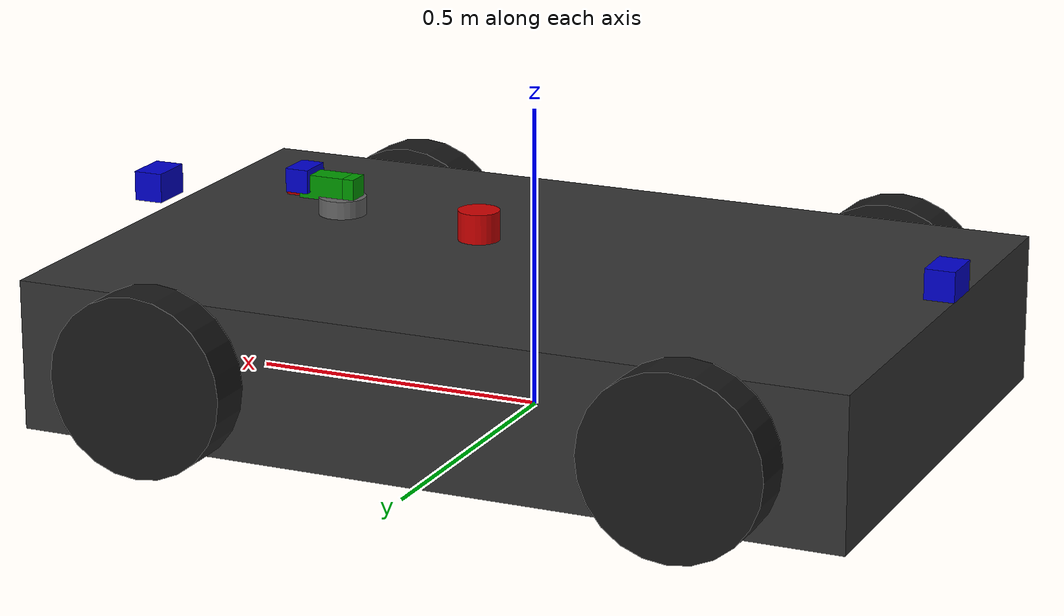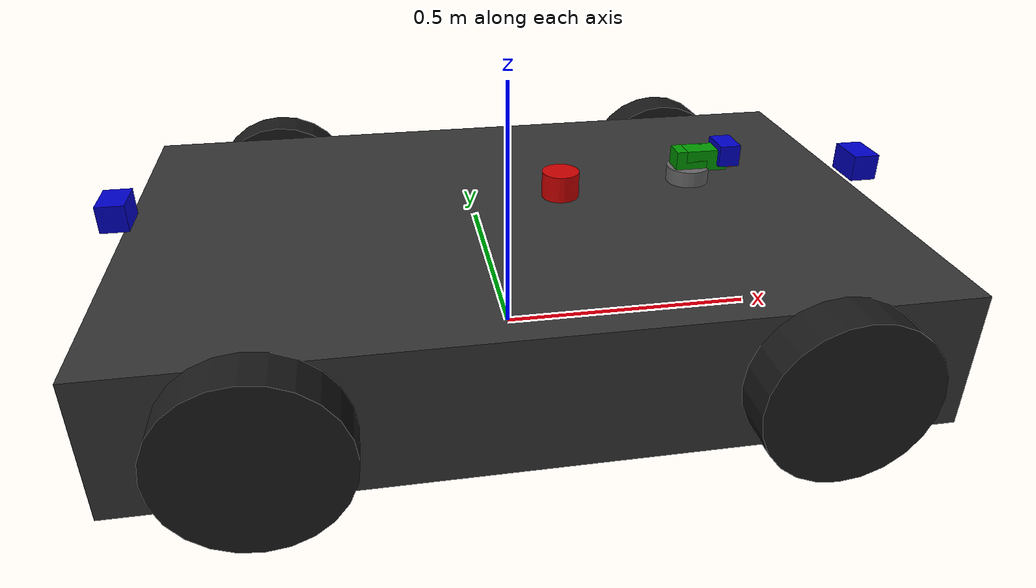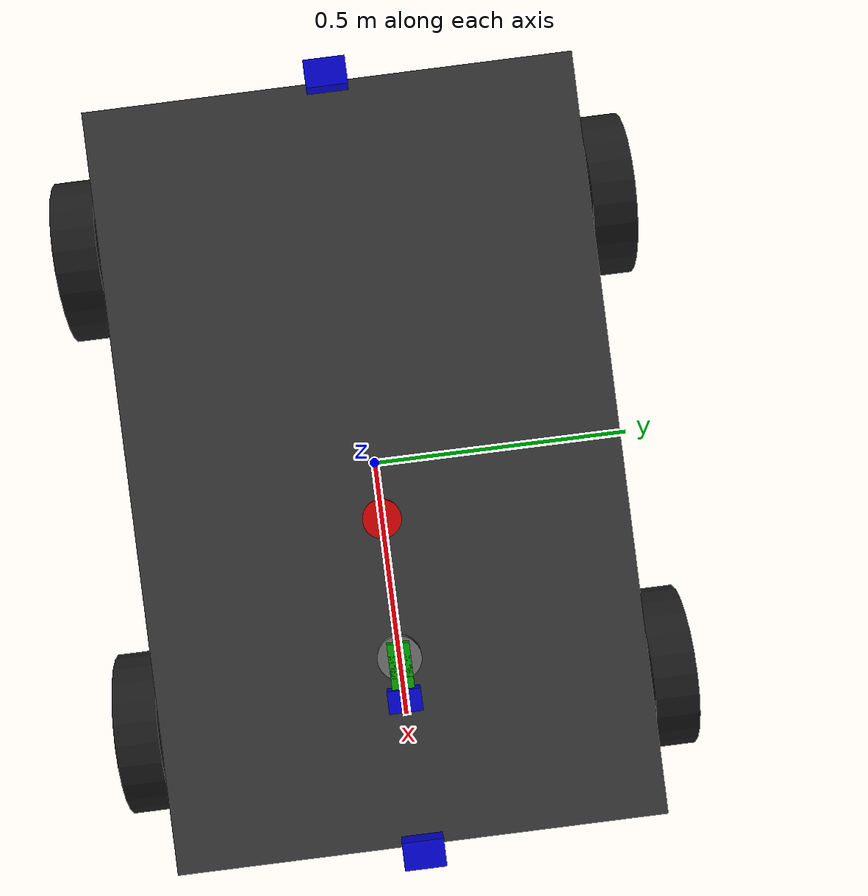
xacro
<?xml version="1.0"?>
<robot xmlns:xacro="http://www.ros.org/wiki/xacro" name="ika_robot">

  <!-- Şasi -->
  <xacro:property name="chassis_length" value="1.4"/>
  <xacro:property name="chassis_width" value="0.9"/>
  <xacro:property name="chassis_height" value="0.25"/>
  <xacro:property name="chassis_mass" value="40.0"/>
  <xacro:property name="ground_clearance" value="0.18"/>

  <!-- Teker -->
  <xacro:property name="wheel_radius" value="0.15"/>
  <xacro:property name="wheel_width" value="0.08"/>
  <xacro:property name="wheel_mass" value="2.0"/>
  <xacro:property name="wheel_base" value="0.9"/>
  <xacro:property name="wheel_track" value="${chassis_width + wheel_width}"/>

  <!-- Kameralar -->
  <xacro:property name="camera_size" value="0.05"/>
  <xacro:property name="camera_mass" value="0.1"/>

  <!-- LiDAR -->
  <xacro:property name="lidar_radius" value="0.035"/>
  <xacro:property name="lidar_height" value="0.05"/>
  <xacro:property name="lidar_mass" value="0.2"/>

  <!-- Gimbal -->
  <xacro:property name="gimbal_mass" value="0.5"/>

  <!-- Renkler -->
  <xacro:property name="chassis_color" value="0.2 0.2 0.2 1.0"/>
  <xacro:property name="wheel_color" value="0.1 0.1 0.1 1.0"/>
  <xacro:property name="camera_color" value="0.0 0.0 0.8 1.0"/>
  <xacro:property name="lidar_color" value="0.8 0.0 0.0 1.0"/>
  <xacro:property name="gimbal_color" value="0.0 0.6 0.0 1.0"/>

  <!-- ══════════════════════════════════════════
       MAKROLAR
       ══════════════════════════════════════════ -->

  <!-- İnertia hesaplama makroları -->
  <xacro:macro name="box_inertia" params="m x y z">
    <inertial>
      <mass value="${m}"/>
      <inertia
        ixx="${m*(y*y+z*z)/12}" ixy="0" ixz="0"
        iyy="${m*(x*x+z*z)/12}" iyz="0"
        izz="${m*(x*x+y*y)/12}"/>
    </inertial>
  </xacro:macro>

  <xacro:macro name="cylinder_inertia" params="m r h">
    <inertial>
      <mass value="${m}"/>
      <inertia
        ixx="${m*(3*r*r+h*h)/12}" ixy="0" ixz="0"
        iyy="${m*(3*r*r+h*h)/12}" iyz="0"
        izz="${m*r*r/2}"/>
    </inertial>
  </xacro:macro>

  <!-- Teker makrosu -->
  <xacro:macro name="wheel" params="prefix x_pos y_pos">
    <link name="${prefix}_wheel_link">
      <visual>
        <geometry>
          <cylinder radius="${wheel_radius}" length="${wheel_width}"/>
        </geometry>
        <material name="${prefix}_wheel_mat">
          <color rgba="${wheel_color}"/>
        </material>
      </visual>
      <collision>
        <geometry>
          <cylinder radius="${wheel_radius}" length="${wheel_width}"/>
        </geometry>
      </collision>
      <xacro:cylinder_inertia m="${wheel_mass}" r="${wheel_radius}" h="${wheel_width}"/>
    </link>

    <joint name="${prefix}_wheel_joint" type="continuous">
      <parent link="chassis_link"/>
      <child link="${prefix}_wheel_link"/>
      <origin xyz="${x_pos} ${y_pos} 0.0" rpy="${-pi/2} 0 0"/>
      <axis xyz="0 0 1"/>
      <dynamics damping="0.1" friction="0.5"/>
    </joint>
  </xacro:macro>

  <!-- Kamera makrosu -->
  <xacro:macro name="camera_sensor" params="name x y z roll pitch yaw">
    <link name="${name}_camera_link">
      <visual>
        <geometry>
          <box size="${camera_size} ${camera_size*1.5} ${camera_size}"/>
        </geometry>
        <material name="${name}_cam_mat">
          <color rgba="${camera_color}"/>
        </material>
      </visual>
      <collision>
        <geometry>
          <box size="${camera_size} ${camera_size*1.5} ${camera_size}"/>
        </geometry>
      </collision>
      <xacro:box_inertia m="${camera_mass}" x="${camera_size}" y="${camera_size*1.5}" z="${camera_size}"/>
    </link>

    <joint name="${name}_camera_joint" type="fixed">
      <parent link="chassis_link"/>
      <child link="${name}_camera_link"/>
      <origin xyz="${x} ${y} ${z}" rpy="${roll} ${pitch} ${yaw}"/>
    </joint>

    <!-- Optik frame (Z=ileri, X=sağ, Y=aşağı — kamera konvansiyonu) -->
    <link name="${name}_camera_optical_link"/>
    <joint name="${name}_camera_optical_joint" type="fixed">
      <parent link="${name}_camera_link"/>
      <child link="${name}_camera_optical_link"/>
      <origin xyz="0 0 0" rpy="${-pi/2} 0 ${-pi/2}"/>
    </joint>
  </xacro:macro>

  <!-- ══════════════════════════════════════════
       BASE LINK
       ══════════════════════════════════════════ -->

  <link name="base_link"/>

  <!-- base_link → base_footprint (zemin seviyesi) -->
  <link name="base_footprint"/>
  <joint name="base_footprint_joint" type="fixed">
    <parent link="base_link"/>
    <child link="base_footprint"/>
    <origin xyz="0 0 ${-(ground_clearance + wheel_radius)}" rpy="0 0 0"/>
  </joint>

  <!-- ══════════════════════════════════════════
       ŞASİ
       ══════════════════════════════════════════ -->

  <link name="chassis_link">
    <visual>
      <geometry>
        <box size="${chassis_length} ${chassis_width} ${chassis_height}"/>
      </geometry>
      <material name="chassis_mat">
        <color rgba="${chassis_color}"/>
      </material>
    </visual>
    <collision>
      <geometry>
        <box size="${chassis_length} ${chassis_width} ${chassis_height}"/>
      </geometry>
    </collision>
    <xacro:box_inertia m="${chassis_mass}" x="${chassis_length}" y="${chassis_width}" z="${chassis_height}"/>
  </link>

  <joint name="chassis_joint" type="fixed">
    <parent link="base_link"/>
    <child link="chassis_link"/>
    <origin xyz="0 0 ${chassis_height/2}" rpy="0 0 0"/>
  </joint>

  <!-- ══════════════════════════════════════════
       TEKERLEKLER (4WD diferansiyel)
       ══════════════════════════════════════════ -->

  <xacro:wheel prefix="front_left"
    x_pos="${wheel_base/2}" y_pos="${wheel_track/2}"/>

  <xacro:wheel prefix="front_right"
    x_pos="${wheel_base/2}" y_pos="${-wheel_track/2}"/>

  <xacro:wheel prefix="rear_left"
    x_pos="${-wheel_base/2}" y_pos="${wheel_track/2}"/>

  <xacro:wheel prefix="rear_right"
    x_pos="${-wheel_base/2}" y_pos="${-wheel_track/2}"/>

  <!-- ══════════════════════════════════════════
       KAMERALAR
       ══════════════════════════════════════════ -->

  <!-- İleri kamera — şasinin ön yüzeyinde, hafif yukarıda -->
  <xacro:camera_sensor name="front"
    x="${chassis_length/2}" y="0" z="${chassis_height/2 + 0.05}"
    roll="0" pitch="0" yaw="0"/>

  <!-- Geri kamera — şasinin arka yüzeyinde -->
  <xacro:camera_sensor name="rear"
    x="${-chassis_length/2}" y="0" z="${chassis_height/2 + 0.05}"
    roll="0" pitch="0" yaw="${pi}"/>

  <!-- ══════════════════════════════════════════
       LiDAR
       ══════════════════════════════════════════ -->

  <link name="lidar_link">
    <visual>
      <geometry>
        <cylinder radius="${lidar_radius}" length="${lidar_height}"/>
      </geometry>
      <material name="lidar_mat">
        <color rgba="${lidar_color}"/>
      </material>
    </visual>
    <collision>
      <geometry>
        <cylinder radius="${lidar_radius}" length="${lidar_height}"/>
      </geometry>
    </collision>
    <xacro:cylinder_inertia m="${lidar_mass}" r="${lidar_radius}" h="${lidar_height}"/>
  </link>

  <joint name="lidar_joint" type="fixed">
    <parent link="chassis_link"/>
    <child link="lidar_link"/>
    <!-- Şasinin üstünde, ortada -->
    <origin xyz="0.1 0 ${chassis_height/2 + lidar_height/2 + 0.02}" rpy="0 0 0"/>
  </joint>

  <!-- ══════════════════════════════════════════
       IMU
       ══════════════════════════════════════════ -->

  <link name="imu_link">
    <visual>
      <geometry>
        <box size="0.03 0.03 0.01"/>
      </geometry>
      <material name="imu_mat">
        <color rgba="0.8 0.8 0.0 1.0"/>
      </material>
    </visual>
    <inertial>
      <mass value="0.02"/>
      <inertia ixx="0.00001" ixy="0" ixz="0" iyy="0.00001" iyz="0" izz="0.00001"/>
    </inertial>
  </link>

  <joint name="imu_joint" type="fixed">
    <parent link="chassis_link"/>
    <child link="imu_link"/>
    <!-- Ağırlık merkezine yakın, şasi içinde -->
    <origin xyz="0 0 0" rpy="0 0 0"/>
  </joint>

  <!-- ══════════════════════════════════════════
       LAZER GİMBAL (PAN-TILT + NİŞAN KAMERASI + LAZER)
       ══════════════════════════════════════════ -->

  <!-- Gimbal base — şasinin üstünde sabit -->
  <link name="gimbal_base_link">
    <visual>
      <geometry>
        <cylinder radius="0.04" length="0.03"/>
      </geometry>
      <material name="gimbal_base_mat">
        <color rgba="0.4 0.4 0.4 1.0"/>
      </material>
    </visual>
    <inertial>
      <mass value="0.2"/>
      <inertia ixx="0.0001" ixy="0" ixz="0" iyy="0.0001" iyz="0" izz="0.0001"/>
    </inertial>
  </link>

  <joint name="gimbal_base_joint" type="fixed">
    <parent link="chassis_link"/>
    <child link="gimbal_base_link"/>
    <!-- Şasinin üstünde, önde -->
    <origin xyz="${chassis_length/4} 0 ${chassis_height/2 + 0.05}" rpy="0 0 0"/>
  </joint>

  <!-- Gimbal pan (yaw) -->
  <link name="gimbal_pan_link">
    <visual>
      <geometry>
        <box size="0.06 0.04 0.04"/>
      </geometry>
      <material name="gimbal_pan_mat">
        <color rgba="${gimbal_color}"/>
      </material>
    </visual>
    <inertial>
      <mass value="0.15"/>
      <inertia ixx="0.00005" ixy="0" ixz="0" iyy="0.00005" iyz="0" izz="0.00005"/>
    </inertial>
  </link>

  <joint name="gimbal_pan_joint" type="revolute">
    <parent link="gimbal_base_link"/>
    <child link="gimbal_pan_link"/>
    <origin xyz="0 0 0.03" rpy="0 0 0"/>
    <axis xyz="0 0 1"/>
    <limit lower="-0.785" upper="0.785" effort="5.0" velocity="2.0"/>
  </joint>

  <!-- Gimbal tilt (pitch) -->
  <link name="gimbal_tilt_link">
    <visual>
      <geometry>
        <box size="0.08 0.04 0.04"/>
      </geometry>
      <material name="gimbal_tilt_mat">
        <color rgba="${gimbal_color}"/>
      </material>
    </visual>
    <inertial>
      <mass value="0.15"/>
      <inertia ixx="0.00005" ixy="0" ixz="0" iyy="0.00005" iyz="0" izz="0.00005"/>
    </inertial>
  </link>

  <joint name="gimbal_tilt_joint" type="revolute">
    <parent link="gimbal_pan_link"/>
    <child link="gimbal_tilt_link"/>
    <origin xyz="0.03 0 0" rpy="0 0 0"/>
    <axis xyz="0 1 0"/>
    <limit lower="-0.524" upper="0.524" effort="5.0" velocity="2.0"/>
  </joint>

  <!-- Nişan kamerası — gimbal tilt üzerinde -->
  <link name="targeting_camera_link">
    <visual>
      <geometry>
        <box size="0.04 0.06 0.04"/>
      </geometry>
      <material name="targeting_cam_mat">
        <color rgba="${camera_color}"/>
      </material>
    </visual>
    <inertial>
      <mass value="${camera_mass}"/>
      <inertia ixx="0.00001" ixy="0" ixz="0" iyy="0.00001" iyz="0" izz="0.00001"/>
    </inertial>
  </link>

  <joint name="targeting_camera_joint" type="fixed">
    <parent link="gimbal_tilt_link"/>
    <child link="targeting_camera_link"/>
    <origin xyz="0.04 0 0.01" rpy="0 0 0"/>
  </joint>

  <!-- Targeting kamera optik frame -->
  <link name="targeting_camera_optical_link"/>
  <joint name="targeting_camera_optical_joint" type="fixed">
    <parent link="targeting_camera_link"/>
    <child link="targeting_camera_optical_link"/>
    <origin xyz="0 0 0" rpy="${-pi/2} 0 ${-pi/2}"/>
  </joint>

  <!-- Lazer — gimbal tilt üzerinde, kameranın yanında -->
  <link name="laser_link">
    <visual>
      <geometry>
        <cylinder radius="0.008" length="0.06"/>
      </geometry>
      <material name="laser_mat">
        <color rgba="1.0 0.0 0.0 1.0"/>
      </material>
    </visual>
    <inertial>
      <mass value="0.05"/>
      <inertia ixx="0.000001" ixy="0" ixz="0" iyy="0.000001" iyz="0" izz="0.000001"/>
    </inertial>
  </link>

  <joint name="laser_joint" type="fixed">
    <parent link="gimbal_tilt_link"/>
    <child link="laser_link"/>
    <origin xyz="0.04 0 -0.015" rpy="0 ${pi/2} 0"/>
  </joint>

</robot>
